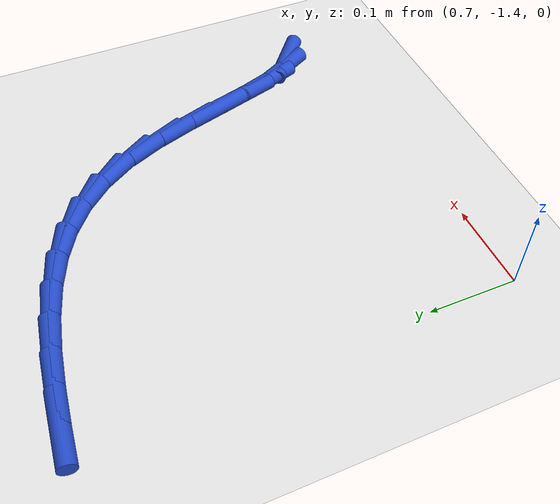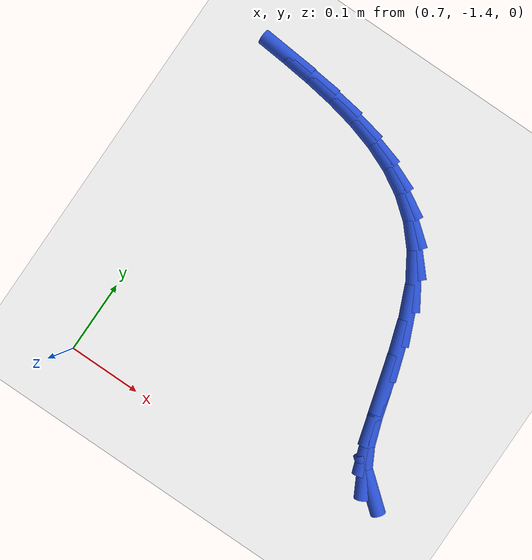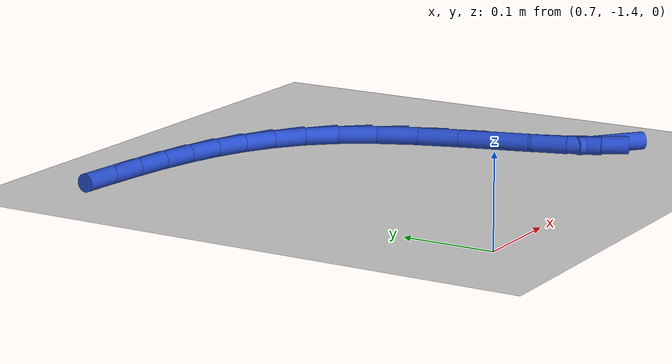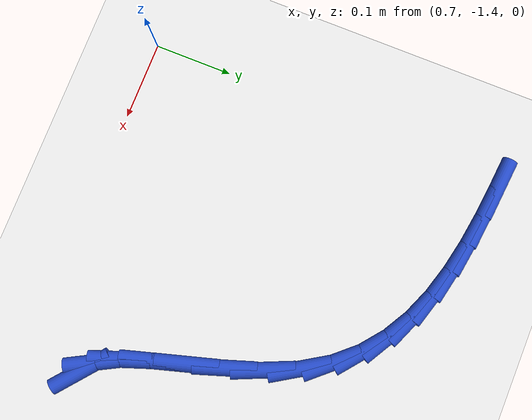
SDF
<sdf version="1.6">
 <world name="default">
  <model name="ground_plane">
   <static>1</static>
   <link name="link">
    <collision name="collision">
     <geometry><plane><normal>0 0 1</normal><size>100 100</size></plane></geometry>
     <surface><friction><ode><mu>100</mu><mu2>50</mu2></ode></friction></surface>
    </collision>
    <visual name="visual">
     <cast_shadows>0</cast_shadows>
     <geometry><plane><normal>0 0 1</normal><size>100 100</size></plane></geometry>
     <material>
      <script><uri>file://media/materials/scripts/gazebo.material</uri><name>Gazebo/WhiteGlow</name></script>
     </material>
    </visual>
   </link>
  </model>
  <model name="line">
   <link name="link_150">
    <pose>1.1158211584187674 -1.3260789466228227 0.01 0 1.57 -0.6884473094417074</pose>
    <collision name="collision">
     <geometry><cylinder><radius>0.01</radius><length>0.08</length></cylinder></geometry>
    </collision>
    <visual name="visual">
     <material>
      <script><name>Gazebo/Blue</name><uri>file://media/materials/scripts/gazebo.material</uri></script>
     </material>
     <geometry><cylinder><radius>0.01</radius><length>0.08</length></cylinder></geometry>
    </visual>
   </link>
   <link name="link_151">
    <pose>1.0991090388738292 -1.3123293996806606 0.01 0 1.57 -1.0810329622236696</pose>
    <collision name="collision">
     <geometry><cylinder><radius>0.01</radius><length>0.08</length></cylinder></geometry>
    </collision>
    <visual name="visual">
     <material>
      <script><name>Gazebo/Blue</name><uri>file://media/materials/scripts/gazebo.material</uri></script>
     </material>
     <geometry><cylinder><radius>0.01</radius><length>0.08</length></cylinder></geometry>
    </visual>
   </link>
   <link name="link_152">
    <pose>1.0850951905750719 -1.2860411555106126 0.01 0 1.57 -1.2341505246201114</pose>
    <collision name="collision">
     <geometry><cylinder><radius>0.01</radius><length>0.08</length></cylinder></geometry>
    </collision>
    <visual name="visual">
     <material>
      <script><name>Gazebo/Blue</name><uri>file://media/materials/scripts/gazebo.material</uri></script>
     </material>
     <geometry><cylinder><radius>0.01</radius><length>0.08</length></cylinder></geometry>
    </visual>
   </link>
   <link name="link_153">
    <pose>1.0726285022346056 -1.250418730893756 0.01 0 1.57 -1.2893668339275035</pose>
    <collision name="collision">
     <geometry><cylinder><radius>0.01</radius><length>0.08</length></cylinder></geometry>
    </collision>
    <visual name="visual">
     <material>
      <script><name>Gazebo/Blue</name><uri>file://media/materials/scripts/gazebo.material</uri></script>
     </material>
     <geometry><cylinder><radius>0.01</radius><length>0.08</length></cylinder></geometry>
    </visual>
   </link>
   <link name="link_154">
    <pose>1.0605578625645422 -1.2086666426111699 0.01 0 1.57 -1.2912394117364105</pose>
    <collision name="collision">
     <geometry><cylinder><radius>0.01</radius><length>0.08</length></cylinder></geometry>
    </collision>
    <visual name="visual">
     <material>
      <script><name>Gazebo/Blue</name><uri>file://media/materials/scripts/gazebo.material</uri></script>
     </material>
     <geometry><cylinder><radius>0.01</radius><length>0.08</length></cylinder></geometry>
    </visual>
   </link>
   <link name="link_155">
    <pose>1.0477321602769911 -1.1639894074439312 0.01 0 1.57 -1.250412924135466</pose>
    <collision name="collision">
     <geometry><cylinder><radius>0.01</radius><length>0.08</length></cylinder></geometry>
    </collision>
    <visual name="visual">
     <material>
      <script><name>Gazebo/Blue</name><uri>file://media/materials/scripts/gazebo.material</uri></script>
     </material>
     <geometry><cylinder><radius>0.01</radius><length>0.08</length></cylinder></geometry>
    </visual>
   </link>
   <link name="link_156">
    <pose>1.0330002840840635 -1.119591542173118 0.01 0 1.57 -1.1606592214654696</pose>
    <collision name="collision">
     <geometry><cylinder><radius>0.01</radius><length>0.08</length></cylinder></geometry>
    </collision>
    <visual name="visual">
     <material>
      <script><name>Gazebo/Blue</name><uri>file://media/materials/scripts/gazebo.material</uri></script>
     </material>
     <geometry><cylinder><radius>0.01</radius><length>0.08</length></cylinder></geometry>
    </visual>
   </link>
   <link name="link_157">
    <pose>1.01521112269787 -1.0786775635798078 0.01 0 1.57 -1.012352850223814</pose>
    <collision name="collision">
     <geometry><cylinder><radius>0.01</radius><length>0.08</length></cylinder></geometry>
    </collision>
    <visual name="visual">
     <material>
      <script><name>Gazebo/Blue</name><uri>file://media/materials/scripts/gazebo.material</uri></script>
     </material>
     <geometry><cylinder><radius>0.01</radius><length>0.08</length></cylinder></geometry>
    </visual>
   </link>
   <link name="link_158">
    <pose>0.993455517436977 -1.0438565224461722 0.01 0 1.57 -0.8426373494795178</pose>
    <collision name="collision">
     <geometry><cylinder><radius>0.01</radius><length>0.08</length></cylinder></geometry>
    </collision>
    <visual name="visual">
     <material>
      <script><name>Gazebo/Blue</name><uri>file://media/materials/scripts/gazebo.material</uri></script>
     </material>
     <geometry><cylinder><radius>0.01</radius><length>0.08</length></cylinder></geometry>
    </visual>
   </link>
   <link name="link_159">
    <pose>0.9678709366067382 -1.0151616312805203 0.01 0 1.57 -0.6755259178875679</pose>
    <collision name="collision">
     <geometry><cylinder><radius>0.01</radius><length>0.08</length></cylinder></geometry>
    </collision>
    <visual name="visual">
     <material>
      <script><name>Gazebo/Blue</name><uri>file://media/materials/scripts/gazebo.material</uri></script>
     </material>
     <geometry><cylinder><radius>0.01</radius><length>0.08</length></cylinder></geometry>
    </visual>
   </link>
   <link name="link_160">
    <pose>0.9388777880218623 -0.9919297643287367 0.01 0 1.57 -0.5228378143840633</pose>
    <collision name="collision">
     <geometry><cylinder><radius>0.01</radius><length>0.08</length></cylinder></geometry>
    </collision>
    <visual name="visual">
     <material>
      <script><name>Gazebo/Blue</name><uri>file://media/materials/scripts/gazebo.material</uri></script>
     </material>
     <geometry><cylinder><radius>0.01</radius><length>0.08</length></cylinder></geometry>
    </visual>
   </link>
   <link name="link_161">
    <pose>0.9068964841468962 -0.9734977843930606 0.01 0 1.57 -0.39231723172906147</pose>
    <collision name="collision">
     <geometry><cylinder><radius>0.01</radius><length>0.08</length></cylinder></geometry>
    </collision>
    <visual name="visual">
     <material>
      <script><name>Gazebo/Blue</name><uri>file://media/materials/scripts/gazebo.material</uri></script>
     </material>
     <geometry><cylinder><radius>0.01</radius><length>0.08</length></cylinder></geometry>
    </visual>
   </link>
   <link name="link_162">
    <pose>0.8723474374463858 -0.9592025542757312 0.01 0 1.57 -0.286767740209635</pose>
    <collision name="collision">
     <geometry><cylinder><radius>0.01</radius><length>0.08</length></cylinder></geometry>
    </collision>
    <visual name="visual">
     <material>
      <script><name>Gazebo/Blue</name><uri>file://media/materials/scripts/gazebo.material</uri></script>
     </material>
     <geometry><cylinder><radius>0.01</radius><length>0.08</length></cylinder></geometry>
    </visual>
   </link>
   <link name="link_163">
    <pose>0.835651060384877 -0.9483809367789872 0.01 0 1.57 -0.20555225123833476</pose>
    <collision name="collision">
     <geometry><cylinder><radius>0.01</radius><length>0.08</length></cylinder></geometry>
    </collision>
    <visual name="visual">
     <material>
      <script><name>Gazebo/Blue</name><uri>file://media/materials/scripts/gazebo.material</uri></script>
     </material>
     <geometry><cylinder><radius>0.01</radius><length>0.08</length></cylinder></geometry>
    </visual>
   </link>
   <link name="link_164">
    <pose>0.7972277654269168 -0.940369794705068 0.01 0 1.57 -0.14653418512475552</pose>
    <collision name="collision">
     <geometry><cylinder><radius>0.01</radius><length>0.08</length></cylinder></geometry>
    </collision>
    <visual name="visual">
     <material>
      <script><name>Gazebo/Blue</name><uri>file://media/materials/scripts/gazebo.material</uri></script>
     </material>
     <geometry><cylinder><radius>0.01</radius><length>0.08</length></cylinder></geometry>
    </visual>
   </link>
   <link name="link_165">
    <pose>0.7574979650370507 -0.9345059908562119 0.01 0 1.57 -0.10741474931595484</pose>
    <collision name="collision">
     <geometry><cylinder><radius>0.01</radius><length>0.08</length></cylinder></geometry>
    </collision>
    <visual name="visual">
     <material>
      <script><name>Gazebo/Blue</name><uri>file://media/materials/scripts/gazebo.material</uri></script>
     </material>
     <geometry><cylinder><radius>0.01</radius><length>0.08</length></cylinder></geometry>
    </visual>
   </link>
   <link name="link_166">
    <pose>0.7168820716798253 -0.930126388034659 0.01 0 1.57 -0.08640561480087276</pose>
    <collision name="collision">
     <geometry><cylinder><radius>0.01</radius><length>0.08</length></cylinder></geometry>
    </collision>
    <visual name="visual">
     <material>
      <script><name>Gazebo/Blue</name><uri>file://media/materials/scripts/gazebo.material</uri></script>
     </material>
     <geometry><cylinder><radius>0.01</radius><length>0.08</length></cylinder></geometry>
    </visual>
   </link>
  </model>
 </world>
</sdf>
